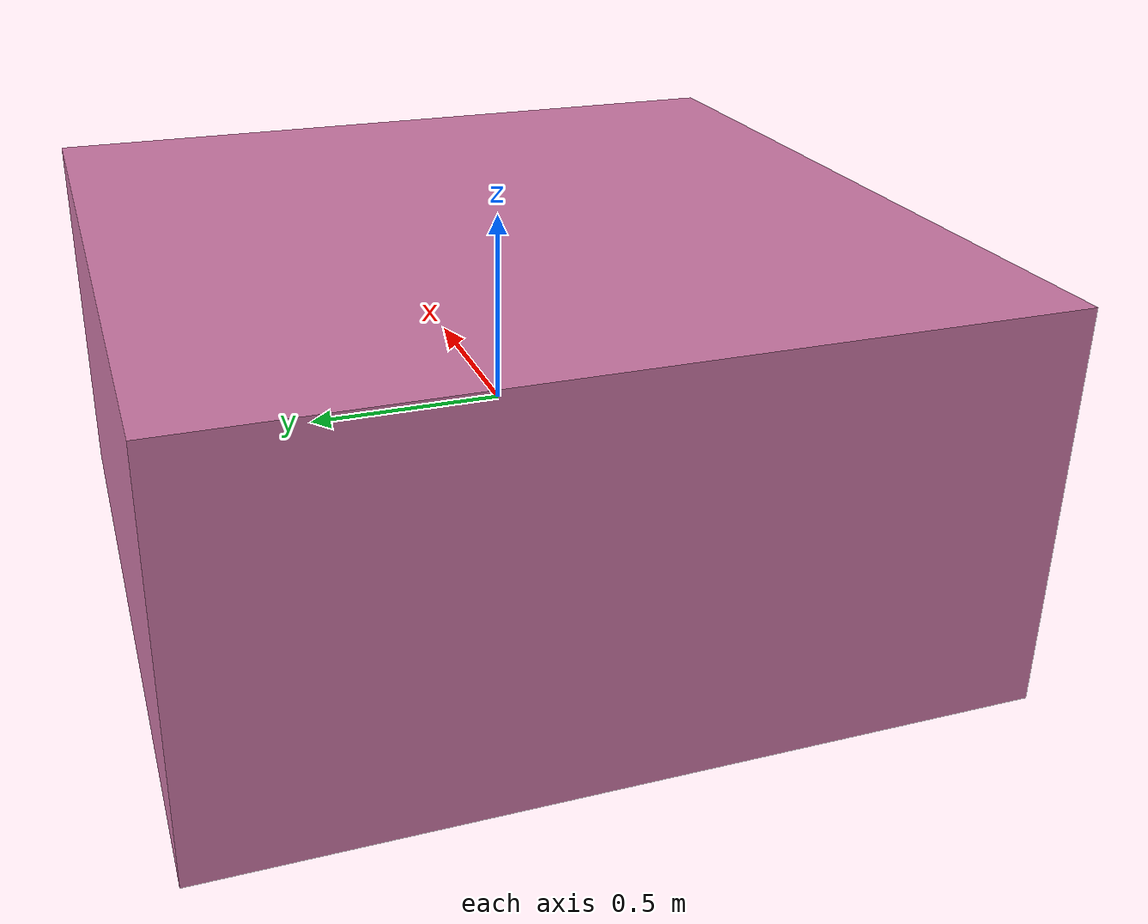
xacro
<?xml version="1.0"?>

<robot xmlns:xacro="http://www.ros.org/wiki/xacro" name="modubot">

  <xacro:macro name="wheel" params="prefix">
    <link name="${prefix}_wheel">
      <visual>
        <origin xyz="0 0 0" rpy="0 0 0" />
        <geometry>
          <cylinder length="0.2" radius="0.3" />
        </geometry>
        <material name="Blue">
          <color rgba="0.0 0.0 1.0 1.0" />
        </material>
      </visual>
    </link>
  </xacro:macro>

  <xacro:macro name="caster_wheel" params="prefix">
    <link name="${prefix}_caster" />

    <xacro:wheel prefix="${prefix}" />

    <joint name="${prefix}_wheel_caster" type="continuous">
      <parent link="${prefix}_caster" />
      <child link="${prefix}_wheel" />
    </joint>
  </xacro:macro>

  <xacro:wheel prefix="rear_left" />
  <xacro:wheel prefix="rear_right" />
  <xacro:caster_wheel prefix="front_left" />
  <xacro:caster_wheel prefix="front_right" />

  <link name="platform">
    <visual>
      <geometry>
        <box size="2 2 1" />
      </geometry>
    </visual>
  </link>

  <joint name="platform_left_caster" type="continuous">
    <parent link="platform" />
    <child link="front_left_caster" />
  </joint>

  <joint name="platform_right_caster" type="continuous">
    <parent link="platform" />
    <child link="front_right_caster" />
  </joint>

  <joint name="platform_left_wheel" type="continuous">
    <parent link="platform" />
    <child link="rear_left_wheel" />
  </joint>

  <joint name="platform_right_wheel" type="continuous">
    <parent link="platform" />
    <child link="rear_right_wheel" />
  </joint>

</robot>
